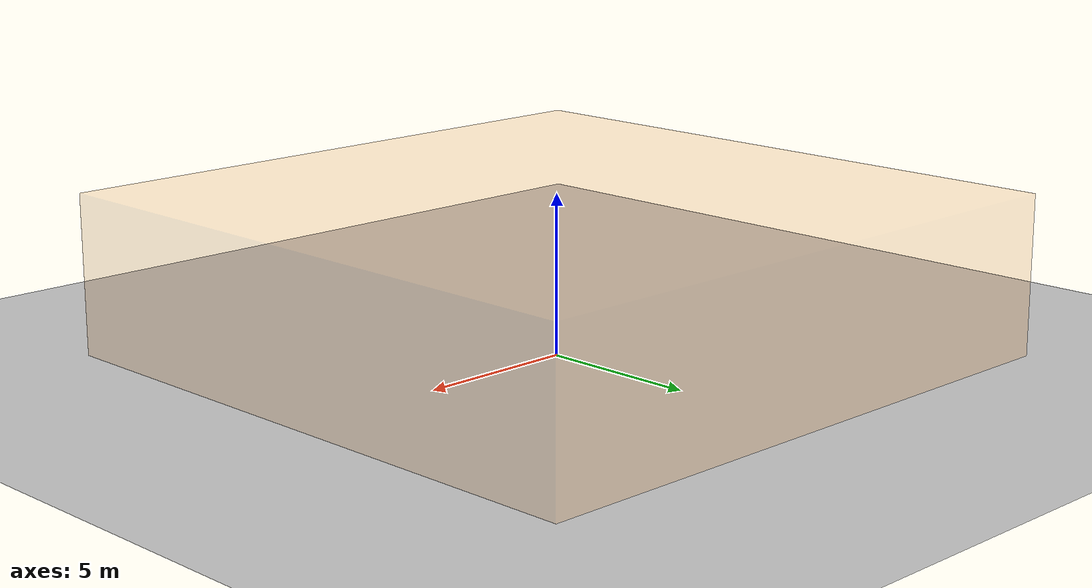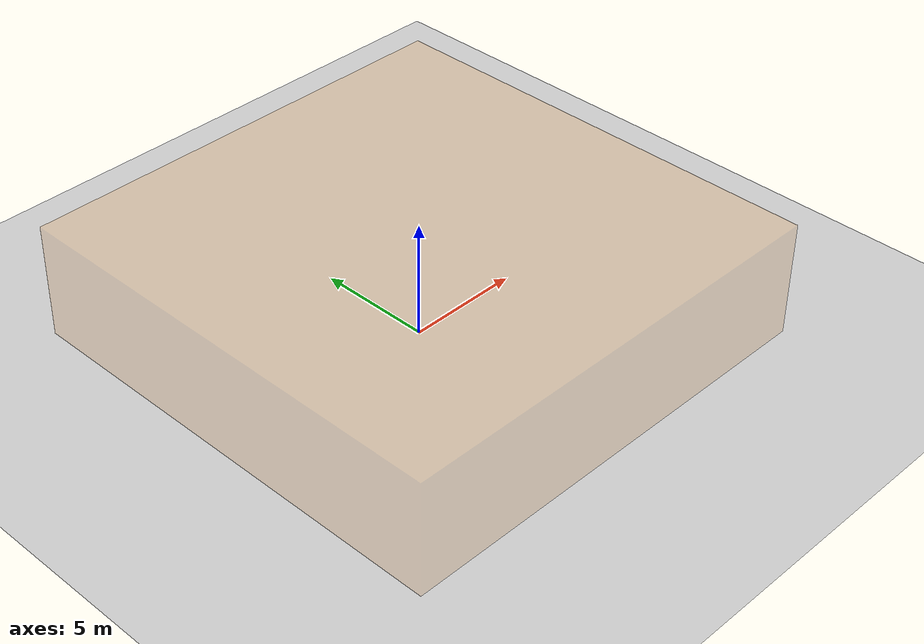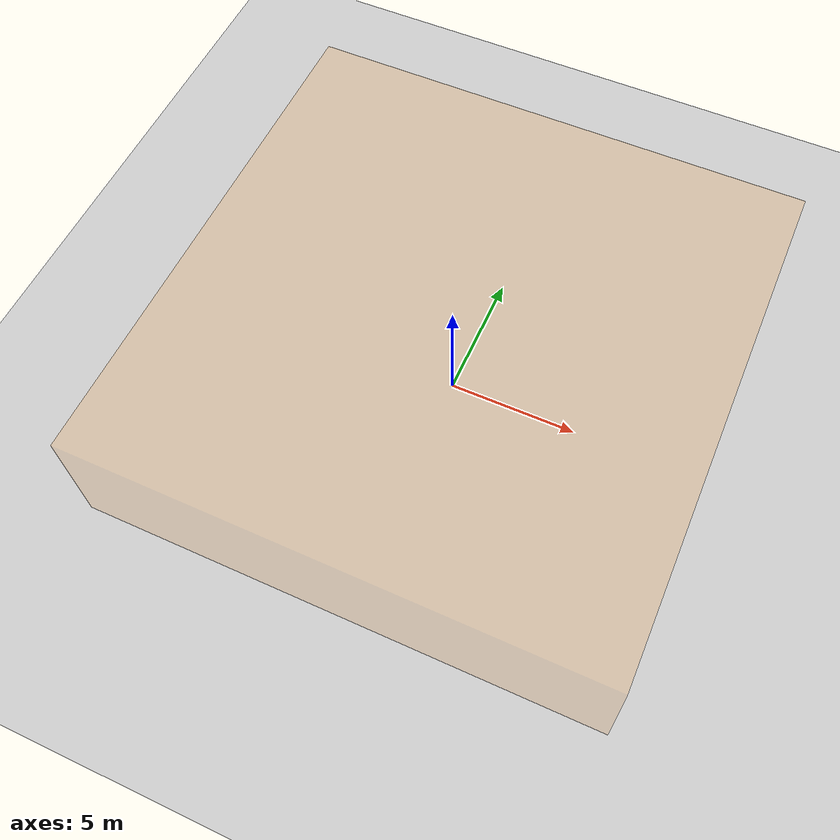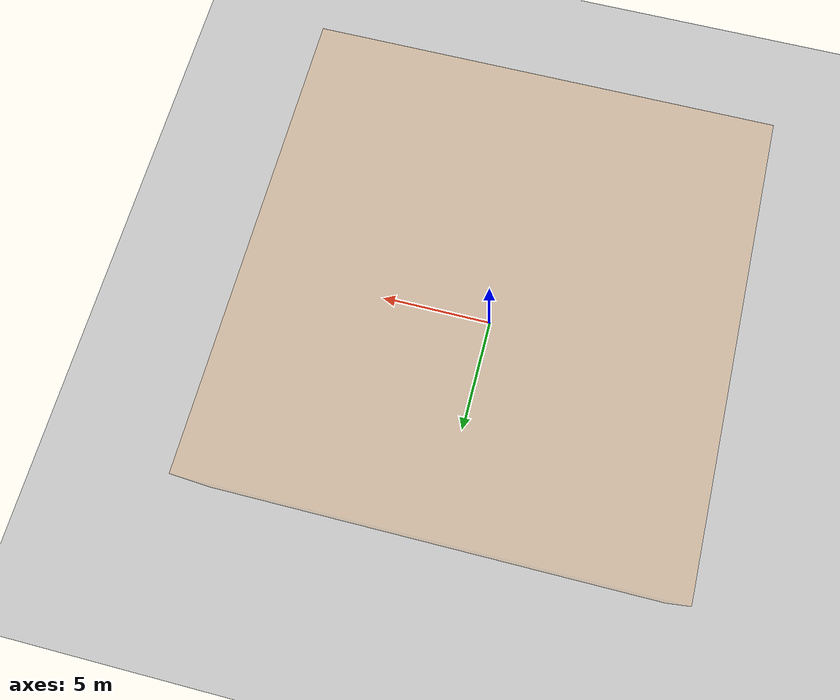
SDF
<sdf version="1.5">
 <world name="default">
  <include><uri>model://sun</uri></include>
  <include><uri>model://ground_plane</uri><pose>0 0 -0.001 0 0 0</pose></include>
  <model name="airspace">
   <pose>0 0 2.5 0 0 0</pose>
   <link name="link_0">
    <gravity>0</gravity>
    <kinematic>1</kinematic>
    <visual name="airspace_visual">
     <geometry><box><size>20 20 5.0</size></box></geometry>
     <material>
      <script>
       <uri>file://media/materials/scripts/gazebo.material</uri>
       <name>Gazebo/DarkOrangeTransparentOverlay</name>
      </script>
     </material>
     <cast_shadows>0</cast_shadows>
     <transparency>0.85</transparency>
    </visual>
   </link>
  </model>
  <model name="wall_0">
   <pose frame="''">0 0 0 0 0 0</pose>
   <link name="link_0">
    <gravity>0</gravity>
    <kinematic>1</kinematic>
    <visual name="wall_0_visual_0">
     <pose>2.0 3.0 1.5 0 0 1.57079632679</pose>
     <geometry><box><size>2.0 0.02 3.0</size></box></geometry>
     <material>
      <script>
       <uri>file://media/materials/scripts/gazebo.material</uri>
       <name>Gazebo/DarkOrangeTransparentOverlay</name>
      </script>
     </material>
    </visual>
    <collision name="wall_0_collision_0">
     <pose>2.0 3.0 1.5 0 0 1.57079632679</pose>
     <geometry><box><size>2.0 0.02 3.0</size></box></geometry>
    </collision>
   </link>
  </model>
  <model name="gate_1">
   <pose frame="''">0 0 0 0 0 0</pose>
   <link name="link_0">
    <gravity>0</gravity>
    <kinematic>1</kinematic>
    <visual name="gate_1_visual_0">
     <pose>0.323223304703 -0.323223304703 0.2 0 0 -0.785398163397</pose>
     <geometry><box><size>0.1 0.02 0.4</size></box></geometry>
     <material>
      <script>
       <uri>file://media/materials/scripts/gazebo.material</uri>
       <name>Gazebo/DarkOrangeTransparentOverlay</name>
      </script>
     </material>
    </visual>
    <collision name="gate_1_collision_0">
     <pose>0.323223304703 -0.323223304703 0.2 0 0 -0.785398163397</pose>
     <geometry><box><size>0.1 0.02 0.4</size></box></geometry>
    </collision>
    <gravity>0</gravity>
    <kinematic>1</kinematic>
    <visual name="gate_1_visual_1">
     <pose>0.676776695297 -0.676776695297 0.2 0 0 -0.785398163397</pose>
     <geometry><box><size>0.1 0.02 0.4</size></box></geometry>
     <material>
      <script>
       <uri>file://media/materials/scripts/gazebo.material</uri>
       <name>Gazebo/DarkOrangeTransparentOverlay</name>
      </script>
     </material>
    </visual>
    <collision name="gate_1_collision_1">
     <pose>0.676776695297 -0.676776695297 0.2 0 0 -0.785398163397</pose>
     <geometry><box><size>0.1 0.02 0.4</size></box></geometry>
    </collision>
    <gravity>0</gravity>
    <kinematic>1</kinematic>
    <visual name="gate_1_visual_2">
     <pose>0.5 -0.5 1.2 0 0 -0.785398163397</pose>
     <geometry><box><size>0.6 0.02 1.6</size></box></geometry>
     <material>
      <script>
       <uri>file://media/materials/scripts/gazebo.material</uri>
       <name>Gazebo/DarkOrangeTransparentOverlay</name>
      </script>
     </material>
    </visual>
    <collision name="gate_1_collision_2">
     <pose>0.5 -0.5 1.2 0 0 -0.785398163397</pose>
     <geometry><box><size>0.6 0.02 1.6</size></box></geometry>
    </collision>
   </link>
  </model>
  <model name="gate_2">
   <pose frame="''">0 0 0 0 0 0</pose>
   <link name="link_0">
    <gravity>0</gravity>
    <kinematic>1</kinematic>
    <visual name="gate_2_visual_0">
     <pose>0.323223304703 0.323223304703 0.2 0 0 0.785398163397</pose>
     <geometry><box><size>0.1 0.02 0.4</size></box></geometry>
     <material>
      <script>
       <uri>file://media/materials/scripts/gazebo.material</uri>
       <name>Gazebo/DarkOrangeTransparentOverlay</name>
      </script>
     </material>
    </visual>
    <collision name="gate_2_collision_0">
     <pose>0.323223304703 0.323223304703 0.2 0 0 0.785398163397</pose>
     <geometry><box><size>0.1 0.02 0.4</size></box></geometry>
    </collision>
    <gravity>0</gravity>
    <kinematic>1</kinematic>
    <visual name="gate_2_visual_1">
     <pose>0.676776695297 0.676776695297 0.2 0 0 0.785398163397</pose>
     <geometry><box><size>0.1 0.02 0.4</size></box></geometry>
     <material>
      <script>
       <uri>file://media/materials/scripts/gazebo.material</uri>
       <name>Gazebo/DarkOrangeTransparentOverlay</name>
      </script>
     </material>
    </visual>
    <collision name="gate_2_collision_1">
     <pose>0.676776695297 0.676776695297 0.2 0 0 0.785398163397</pose>
     <geometry><box><size>0.1 0.02 0.4</size></box></geometry>
    </collision>
    <gravity>0</gravity>
    <kinematic>1</kinematic>
    <visual name="gate_2_visual_2">
     <pose>0.5 0.5 1.2 0 0 0.785398163397</pose>
     <geometry><box><size>0.6 0.02 1.6</size></box></geometry>
     <material>
      <script>
       <uri>file://media/materials/scripts/gazebo.material</uri>
       <name>Gazebo/DarkOrangeTransparentOverlay</name>
      </script>
     </material>
    </visual>
    <collision name="gate_2_collision_2">
     <pose>0.5 0.5 1.2 0 0 0.785398163397</pose>
     <geometry><box><size>0.6 0.02 1.6</size></box></geometry>
    </collision>
   </link>
  </model>
  <model name="gate_3">
   <pose frame="''">0 0 0 0 0 0</pose>
   <link name="link_0">
    <gravity>0</gravity>
    <kinematic>1</kinematic>
    <visual name="gate_3_visual_0">
     <pose>-0.323223304703 0.323223304703 0.2 0 0 2.35619449019</pose>
     <geometry><box><size>0.1 0.02 0.4</size></box></geometry>
     <material>
      <script>
       <uri>file://media/materials/scripts/gazebo.material</uri>
       <name>Gazebo/DarkOrangeTransparentOverlay</name>
      </script>
     </material>
    </visual>
    <collision name="gate_3_collision_0">
     <pose>-0.323223304703 0.323223304703 0.2 0 0 2.35619449019</pose>
     <geometry><box><size>0.1 0.02 0.4</size></box></geometry>
    </collision>
    <gravity>0</gravity>
    <kinematic>1</kinematic>
    <visual name="gate_3_visual_1">
     <pose>-0.676776695297 0.676776695297 0.2 0 0 2.35619449019</pose>
     <geometry><box><size>0.1 0.02 0.4</size></box></geometry>
     <material>
      <script>
       <uri>file://media/materials/scripts/gazebo.material</uri>
       <name>Gazebo/DarkOrangeTransparentOverlay</name>
      </script>
     </material>
    </visual>
    <collision name="gate_3_collision_1">
     <pose>-0.676776695297 0.676776695297 0.2 0 0 2.35619449019</pose>
     <geometry><box><size>0.1 0.02 0.4</size></box></geometry>
    </collision>
    <gravity>0</gravity>
    <kinematic>1</kinematic>
    <visual name="gate_3_visual_2">
     <pose>-0.5 0.5 1.2 0 0 2.35619449019</pose>
     <geometry><box><size>0.6 0.02 1.6</size></box></geometry>
     <material>
      <script>
       <uri>file://media/materials/scripts/gazebo.material</uri>
       <name>Gazebo/DarkOrangeTransparentOverlay</name>
      </script>
     </material>
    </visual>
    <collision name="gate_3_collision_2">
     <pose>-0.5 0.5 1.2 0 0 2.35619449019</pose>
     <geometry><box><size>0.6 0.02 1.6</size></box></geometry>
    </collision>
   </link>
  </model>
  <model name="gate_4">
   <pose frame="''">0 0 0 0 0 0</pose>
   <link name="link_0">
    <gravity>0</gravity>
    <kinematic>1</kinematic>
    <visual name="gate_4_visual_0">
     <pose>-0.323223304703 -0.323223304703 0.2 0 0 -2.35619449019</pose>
     <geometry><box><size>0.1 0.02 0.4</size></box></geometry>
     <material>
      <script>
       <uri>file://media/materials/scripts/gazebo.material</uri>
       <name>Gazebo/DarkOrangeTransparentOverlay</name>
      </script>
     </material>
    </visual>
    <collision name="gate_4_collision_0">
     <pose>-0.323223304703 -0.323223304703 0.2 0 0 -2.35619449019</pose>
     <geometry><box><size>0.1 0.02 0.4</size></box></geometry>
    </collision>
    <gravity>0</gravity>
    <kinematic>1</kinematic>
    <visual name="gate_4_visual_1">
     <pose>-0.676776695297 -0.676776695297 0.2 0 0 -2.35619449019</pose>
     <geometry><box><size>0.1 0.02 0.4</size></box></geometry>
     <material>
      <script>
       <uri>file://media/materials/scripts/gazebo.material</uri>
       <name>Gazebo/DarkOrangeTransparentOverlay</name>
      </script>
     </material>
    </visual>
    <collision name="gate_4_collision_1">
     <pose>-0.676776695297 -0.676776695297 0.2 0 0 -2.35619449019</pose>
     <geometry><box><size>0.1 0.02 0.4</size></box></geometry>
    </collision>
    <gravity>0</gravity>
    <kinematic>1</kinematic>
    <visual name="gate_4_visual_2">
     <pose>-0.5 -0.5 1.2 0 0 -2.35619449019</pose>
     <geometry><box><size>0.6 0.02 1.6</size></box></geometry>
     <material>
      <script>
       <uri>file://media/materials/scripts/gazebo.material</uri>
       <name>Gazebo/DarkOrangeTransparentOverlay</name>
      </script>
     </material>
    </visual>
    <collision name="gate_4_collision_2">
     <pose>-0.5 -0.5 1.2 0 0 -2.35619449019</pose>
     <geometry><box><size>0.6 0.02 1.6</size></box></geometry>
    </collision>
   </link>
  </model>
  <physics default="0" name="default_physics" type="ode">
   <gravity>0 0 -9.8066</gravity>
   <ode>
    <solver>
     <type>quick</type>
     <iters>20</iters>
     <sor>1.3</sor>
     <use_dynamic_moi_rescaling>0</use_dynamic_moi_rescaling>
    </solver>
    <constraints>
     <cfm>0</cfm>
     <erp>0.2</erp>
     <contact_max_correcting_vel>100</contact_max_correcting_vel>
     <contact_surface_layer>0.001</contact_surface_layer>
    </constraints>
   </ode>
   <max_step_size>0.002</max_step_size>
   <real_time_factor>1</real_time_factor>
   <real_time_update_rate>500</real_time_update_rate>
   <magnetic_field>6e-06 2.3e-05 -4.2e-05</magnetic_field>
  </physics>
 </world>
</sdf>
